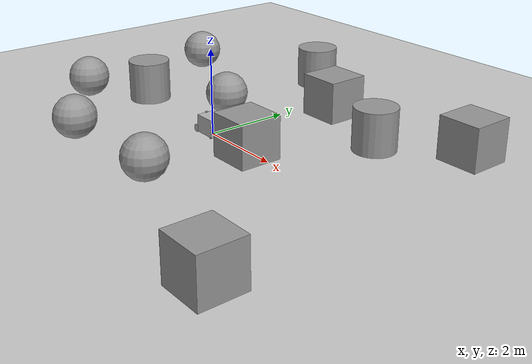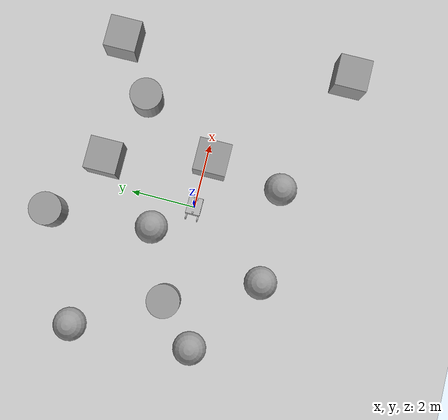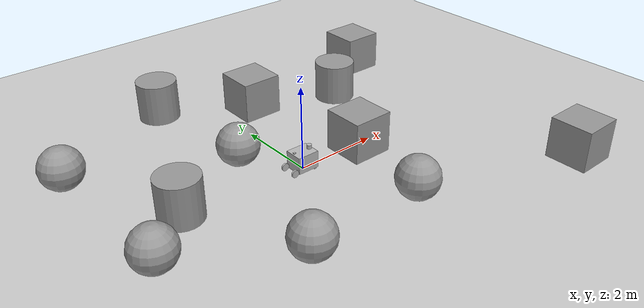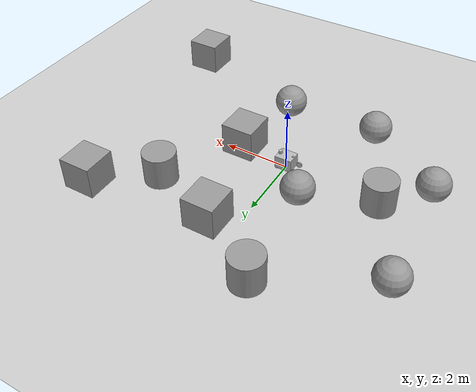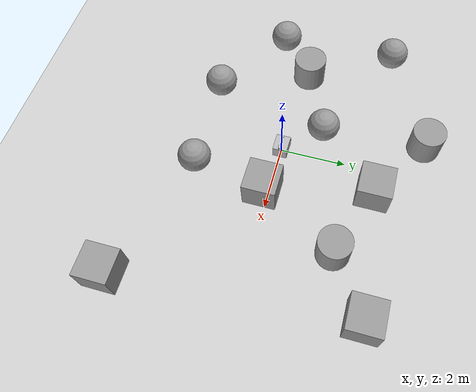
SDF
<sdf version="1.7">
 <world name="default">
  <light name="sun" type="directional">
   <pose>0 0 10 0 -0 0</pose>
   <diffuse>0.8 0.8 0.8 1</diffuse>
   <specular>0.2 0.2 0.2 1</specular>
   <attenuation>
    <range>1000</range>
    <constant>0.9</constant>
    <linear>0.01</linear>
    <quadratic>0.001</quadratic>
   </attenuation>
   <direction>-0.5 0.1 -0.9</direction>
   <spot><inner_angle>0</inner_angle><outer_angle>0</outer_angle><falloff>0</falloff></spot>
  </light>
  <model name="ground_plane">
   <static>1</static>
   <link name="link">
    <collision name="collision">
     <geometry><plane><normal>0 0 1</normal><size>100 100</size></plane></geometry>
     <surface><friction><ode><mu>100</mu><mu2>50</mu2></ode></friction></surface>
    </collision>
    <visual name="visual">
     <cast_shadows>0</cast_shadows>
     <geometry><plane><normal>0 0 1</normal><size>100 100</size></plane></geometry>
     <material>
      <script><uri>file://media/materials/scripts/gazebo.material</uri><name>Gazebo/Grey</name></script>
     </material>
    </visual>
   </link>
  </model>
  <gravity>0 0 -9.8</gravity>
  <magnetic_field>6e-06 2.3e-05 -4.2e-05</magnetic_field>
  <atmosphere type="adiabatic"/>
  <physics type="ode">
   <max_step_size>0.001</max_step_size>
   <real_time_factor>1</real_time_factor>
   <real_time_update_rate>1000</real_time_update_rate>
  </physics>
  <scene><ambient>0.4 0.4 0.4 1</ambient><background>0.7 0.7 0.7 1</background><shadows>1</shadows></scene>
  <spherical_coordinates>
   <surface_model>EARTH_WGS84</surface_model>
   <latitude_deg>0</latitude_deg>
   <longitude_deg>0</longitude_deg>
   <elevation>0</elevation>
   <heading_deg>0</heading_deg>
  </spherical_coordinates>
  <model name="unit_box">
   <pose>1.51271 -0.181418 0.499995 0 -1e-05 0</pose>
   <link name="link">
    <inertial>
     <mass>1</mass>
     <inertia>
      <ixx>0.166667</ixx>
      <ixy>0</ixy>
      <ixz>0</ixz>
      <iyy>0.166667</iyy>
      <iyz>0</iyz>
      <izz>0.166667</izz>
     </inertia>
    </inertial>
    <collision name="collision"><geometry><box><size>1 1 1</size></box></geometry></collision>
    <visual name="visual">
     <geometry><box><size>1 1 1</size></box></geometry>
     <material>
      <script><name>Gazebo/Grey</name><uri>file://media/materials/scripts/gazebo.material</uri></script>
     </material>
    </visual>
   </link>
  </model>
  <model name="unit_sphere">
   <pose>-0.944955 1.09802 0.5 0 -0 0</pose>
   <link name="link">
    <inertial>
     <mass>1</mass>
     <inertia><ixx>0.1</ixx><ixy>0</ixy><ixz>0</ixz><iyy>0.1</iyy><iyz>0</iyz><izz>0.1</izz></inertia>
    </inertial>
    <collision name="collision"><geometry><sphere><radius>0.5</radius></sphere></geometry></collision>
    <visual name="visual">
     <geometry><sphere><radius>0.5</radius></sphere></geometry>
     <material>
      <script><name>Gazebo/Grey</name><uri>file://media/materials/scripts/gazebo.material</uri></script>
     </material>
    </visual>
   </link>
  </model>
  <audio><device>default</device></audio>
  <model name="diff_bot">
   <link name="base_link">
    <inertial>
     <pose>0.000869 0 0.002817 1.5708 -0 1.5708</pose>
     <mass>15.175</mass>
     <inertia>
      <ixx>0.572991</ixx>
      <ixy>-9.85017e-19</ixy>
      <ixz>-1.97894e-18</ixz>
      <iyy>0.594538</iyy>
      <iyz>-0.00347722</iyz>
      <izz>0.463474</izz>
     </inertia>
    </inertial>
    <collision name="base_link_collision"><geometry><box><size>0.525 0.44 0.41</size></box></geometry></collision>
    <collision name="base_link_fixed_joint_lump__imu_link_collision_1">
     <pose>-0.2175 0 0.23 0 -0 0</pose>
     <geometry><box><size>0.05 0.05 0.02</size></box></geometry>
    </collision>
    <collision name="base_link_fixed_joint_lump__lidar_link_collision_2">
     <pose>0.1925 0 0.25 0 -0 0</pose>
     <geometry><cylinder><length>0.09</length><radius>0.06</radius></cylinder></geometry>
    </collision>
    <visual name="base_link_visual"><geometry><box><size>0.525 0.44 0.41</size></box></geometry></visual>
    <visual name="base_link_fixed_joint_lump__imu_link_visual_1">
     <pose>-0.2175 0 0.23 0 -0 0</pose>
     <geometry><box><size>0.05 0.05 0.02</size></box></geometry>
    </visual>
    <visual name="base_link_fixed_joint_lump__lidar_link_visual_2">
     <pose>0.1925 0 0.25 0 -0 0</pose>
     <geometry><cylinder><length>0.09</length><radius>0.06</radius></cylinder></geometry>
    </visual>
    <sensor name="imu_sensor" type="imu">
     <plugin name="imu_plugin" filename="libgazebo_ros_imu_sensor.so">
      <ros><namespace>/demo</namespace><remapping>~/out:=imu</remapping></ros>
      <initial_orientation_as_reference>0</initial_orientation_as_reference>
     </plugin>
     <always_on>1</always_on>
     <update_rate>100</update_rate>
     <visualize>1</visualize>
     <imu>
      <angular_velocity>
       <x>
        <noise type="gaussian">
         <mean>0</mean>
         <stddev>0.0002</stddev>
         <bias_mean>7.5e-06</bias_mean>
         <bias_stddev>8e-07</bias_stddev>
        </noise>
       </x>
       <y>
        <noise type="gaussian">
         <mean>0</mean>
         <stddev>0.0002</stddev>
         <bias_mean>7.5e-06</bias_mean>
         <bias_stddev>8e-07</bias_stddev>
        </noise>
       </y>
       <z>
        <noise type="gaussian">
         <mean>0</mean>
         <stddev>0.0002</stddev>
         <bias_mean>7.5e-06</bias_mean>
         <bias_stddev>8e-07</bias_stddev>
        </noise>
       </z>
      </angular_velocity>
      <linear_acceleration>
       <x>
        <noise type="gaussian">
         <mean>0</mean>
         <stddev>0.017</stddev>
         <bias_mean>0.1</bias_mean>
         <bias_stddev>0.001</bias_stddev>
        </noise>
       </x>
       <y>
        <noise type="gaussian">
         <mean>0</mean>
         <stddev>0.017</stddev>
         <bias_mean>0.1</bias_mean>
         <bias_stddev>0.001</bias_stddev>
        </noise>
       </y>
       <z>
        <noise type="gaussian">
         <mean>0</mean>
         <stddev>0.017</stddev>
         <bias_mean>0.1</bias_mean>
         <bias_stddev>0.001</bias_stddev>
        </noise>
       </z>
      </linear_acceleration>
     </imu>
     <pose>-0.2175 0 0.23 0 -0 0</pose>
    </sensor>
    <sensor name="lidar" type="ray">
     <always_on>1</always_on>
     <visualize>1</visualize>
     <update_rate>5</update_rate>
     <ray>
      <scan>
       <horizontal>
        <samples>360</samples>
        <resolution>1</resolution>
        <min_angle>0</min_angle>
        <max_angle>6.28</max_angle>
       </horizontal>
       <vertical><samples>1</samples><min_angle>0</min_angle><max_angle>0</max_angle></vertical>
      </scan>
      <range><min>0.12</min><max>3.5</max><resolution>0.015</resolution></range>
      <noise><type>gaussian</type><mean>0</mean><stddev>0.01</stddev></noise>
     </ray>
     <plugin name="scan" filename="libgazebo_ros_ray_sensor.so">
      <ros><remapping>~/out:=scan</remapping></ros>
      <output_type>sensor_msgs/LaserScan</output_type>
      <frame_name>lidar_link</frame_name>
     </plugin>
     <pose>0.1925 0 0.25 0 -0 0</pose>
    </sensor>
   </link>
   <joint name="left_caster_joint" type="revolute">
    <pose relative_to="base_link">0.2 0.18 -0.205 0 -0 0</pose>
    <parent>base_link</parent>
    <child>left_caster_link</child>
    <axis>
     <xyz>0 1 0</xyz>
     <limit><lower>-1e+16</lower><upper>1e+16</upper></limit>
     <dynamics><spring_reference>0</spring_reference><spring_stiffness>0</spring_stiffness></dynamics>
    </axis>
   </joint>
   <link name="left_caster_link">
    <pose relative_to="left_caster_joint">0 0 0 0 -0 0</pose>
    <inertial>
     <pose>0 0 0 1.5708 -0 0</pose>
     <mass>0.5</mass>
     <inertia>
      <ixx>0.000319792</ixx>
      <ixy>0</ixy>
      <ixz>0</ixz>
      <iyy>0.000319792</iyy>
      <iyz>0</iyz>
      <izz>0.00050625</izz>
     </inertia>
    </inertial>
    <collision name="left_caster_link_collision">
     <pose>0 0 0 1.5708 -0 0</pose>
     <geometry><cylinder><length>0.04</length><radius>0.045</radius></cylinder></geometry>
    </collision>
    <visual name="left_caster_link_visual">
     <pose>0 0 0 1.5708 -0 0</pose>
     <geometry><cylinder><length>0.04</length><radius>0.045</radius></cylinder></geometry>
    </visual>
   </link>
   <joint name="left_wheel_joint" type="revolute">
    <pose relative_to="base_link">-0.3475 0.18 -0.16 0 -0 0</pose>
    <parent>base_link</parent>
    <child>left_wheel_link</child>
    <axis>
     <xyz>0 1 0</xyz>
     <limit><lower>-1e+16</lower><upper>1e+16</upper></limit>
     <dynamics><spring_reference>0</spring_reference><spring_stiffness>0</spring_stiffness></dynamics>
    </axis>
   </joint>
   <link name="left_wheel_link">
    <pose relative_to="left_wheel_joint">0 0 0 0 -0 0</pose>
    <inertial>
     <pose>0 0 0 1.5708 -0 0</pose>
     <mass>1.5</mass>
     <inertia>
      <ixx>0.0032375</ixx>
      <ixy>0</ixy>
      <ixz>0</ixz>
      <iyy>0.0032375</iyy>
      <iyz>0</iyz>
      <izz>0.006075</izz>
     </inertia>
    </inertial>
    <collision name="left_wheel_link_collision">
     <pose>0 0 0 1.5708 -0 0</pose>
     <geometry><cylinder><length>0.04</length><radius>0.09</radius></cylinder></geometry>
    </collision>
    <visual name="left_wheel_link_visual">
     <pose>0 0 0 1.5708 -0 0</pose>
     <geometry><cylinder><length>0.04</length><radius>0.09</radius></cylinder></geometry>
    </visual>
   </link>
   <joint name="right_caster_joint" type="revolute">
    <pose relative_to="base_link">0.2 -0.18 -0.205 0 -0 0</pose>
    <parent>base_link</parent>
    <child>right_caster_link</child>
    <axis>
     <xyz>0 1 0</xyz>
     <limit><lower>-1e+16</lower><upper>1e+16</upper></limit>
     <dynamics><spring_reference>0</spring_reference><spring_stiffness>0</spring_stiffness></dynamics>
    </axis>
   </joint>
   <link name="right_caster_link">
    <pose relative_to="right_caster_joint">0 0 0 0 -0 0</pose>
    <inertial>
     <pose>0 0 0 1.5708 -0 0</pose>
     <mass>0.5</mass>
     <inertia>
      <ixx>0.000319792</ixx>
      <ixy>0</ixy>
      <ixz>0</ixz>
      <iyy>0.000319792</iyy>
      <iyz>0</iyz>
      <izz>0.00050625</izz>
     </inertia>
    </inertial>
    <collision name="right_caster_link_collision">
     <pose>0 0 0 1.5708 -0 0</pose>
     <geometry><cylinder><length>0.04</length><radius>0.045</radius></cylinder></geometry>
    </collision>
    <visual name="right_caster_link_visual">
     <pose>0 0 0 1.5708 -0 0</pose>
     <geometry><cylinder><length>0.04</length><radius>0.045</radius></cylinder></geometry>
    </visual>
   </link>
   <joint name="right_wheel_joint" type="revolute">
    <pose relative_to="base_link">-0.3475 -0.18 -0.16 0 -0 0</pose>
    <parent>base_link</parent>
    <child>right_wheel_link</child>
    <axis>
     <xyz>0 1 0</xyz>
     <limit><lower>-1e+16</lower><upper>1e+16</upper></limit>
     <dynamics><spring_reference>0</spring_reference><spring_stiffness>0</spring_stiffness></dynamics>
    </axis>
   </joint>
   <link name="right_wheel_link">
    <pose relative_to="right_wheel_joint">0 0 0 0 -0 0</pose>
    <inertial>
     <pose>0 0 0 1.5708 -0 0</pose>
     <mass>1.5</mass>
     <inertia>
      <ixx>0.0032375</ixx>
      <ixy>0</ixy>
      <ixz>0</ixz>
      <iyy>0.0032375</iyy>
      <iyz>0</iyz>
      <izz>0.006075</izz>
     </inertia>
    </inertial>
    <collision name="right_wheel_link_collision">
     <pose>0 0 0 1.5708 -0 0</pose>
     <geometry><cylinder><length>0.04</length><radius>0.09</radius></cylinder></geometry>
    </collision>
    <visual name="right_wheel_link_visual">
     <pose>0 0 0 1.5708 -0 0</pose>
     <geometry><cylinder><length>0.04</length><radius>0.09</radius></cylinder></geometry>
    </visual>
   </link>
   <static>0</static>
   <plugin name="gazebo_ros2_control" filename="libgazebo_ros2_control.so">
    <parameters>/home/future/Documents/Robot/nav_ws/install/diff_control/share/diff_control/config/diffbot_controllers.yaml</parameters>
    <parameters>/home/future/Documents/Robot/nav_ws/install/diff_control/share/diff_control/config/gazebo_use_sim_control.yaml</parameters>
   </plugin>
   <pose>0.00124 -0.00159 0.250001 0 -1e-06 -0.009603</pose>
  </model>
  <model name="unit_sphere_0">
   <pose>-4.14249 -0.903643 0.5 0 -0 0</pose>
   <link name="link">
    <inertial>
     <mass>1</mass>
     <inertia><ixx>0.1</ixx><ixy>0</ixy><ixz>0</ixz><iyy>0.1</iyy><iyz>0</iyz><izz>0.1</izz></inertia>
    </inertial>
    <collision name="collision"><geometry><sphere><radius>0.5</radius></sphere></geometry></collision>
    <visual name="visual">
     <geometry><sphere><radius>0.5</radius></sphere></geometry>
     <material>
      <script><name>Gazebo/Grey</name><uri>file://media/materials/scripts/gazebo.material</uri></script>
     </material>
    </visual>
   </link>
  </model>
  <model name="unit_sphere_1">
   <pose>-1.76406 -2.49421 0.5 0 -0 0</pose>
   <link name="link">
    <inertial>
     <mass>1</mass>
     <inertia><ixx>0.1</ixx><ixy>0</ixy><ixz>0</ixz><iyy>0.1</iyy><iyz>0</iyz><izz>0.1</izz></inertia>
    </inertial>
    <collision name="collision"><geometry><sphere><radius>0.5</radius></sphere></geometry></collision>
    <visual name="visual">
     <geometry><sphere><radius>0.5</radius></sphere></geometry>
     <material>
      <script><name>Gazebo/Grey</name><uri>file://media/materials/scripts/gazebo.material</uri></script>
     </material>
    </visual>
   </link>
  </model>
  <model name="unit_sphere_2">
   <pose>-4.32969 2.71476 0.5 0 -0 0</pose>
   <link name="link">
    <inertial>
     <mass>1</mass>
     <inertia><ixx>0.1</ixx><ixy>0</ixy><ixz>0</ixz><iyy>0.1</iyy><iyz>0</iyz><izz>0.1</izz></inertia>
    </inertial>
    <collision name="collision"><geometry><sphere><radius>0.5</radius></sphere></geometry></collision>
    <visual name="visual">
     <geometry><sphere><radius>0.5</radius></sphere></geometry>
     <material>
      <script><name>Gazebo/Grey</name><uri>file://media/materials/scripts/gazebo.material</uri></script>
     </material>
    </visual>
   </link>
  </model>
  <model name="unit_cylinder">
   <pose>-1.20514 4.24986 0.499992 -3e-06 4e-06 0</pose>
   <link name="link">
    <inertial>
     <mass>1</mass>
     <inertia><ixx>0.145833</ixx><ixy>0</ixy><ixz>0</ixz><iyy>0.145833</iyy><iyz>0</iyz><izz>0.125</izz></inertia>
    </inertial>
    <collision name="collision">
     <geometry><cylinder><radius>0.5</radius><length>1</length></cylinder></geometry>
    </collision>
    <visual name="visual">
     <geometry><cylinder><radius>0.5</radius><length>1</length></cylinder></geometry>
     <material>
      <script><name>Gazebo/Grey</name><uri>file://media/materials/scripts/gazebo.material</uri></script>
     </material>
    </visual>
   </link>
  </model>
  <model name="unit_box_0">
   <pose>4.55142 3.41188 0.499995 -1e-05 -0 -0</pose>
   <link name="link">
    <inertial>
     <mass>1</mass>
     <inertia>
      <ixx>0.166667</ixx>
      <ixy>0</ixy>
      <ixz>0</ixz>
      <iyy>0.166667</iyy>
      <iyz>0</iyz>
      <izz>0.166667</izz>
     </inertia>
    </inertial>
    <collision name="collision"><geometry><box><size>1 1 1</size></box></geometry></collision>
    <visual name="visual">
     <geometry><box><size>1 1 1</size></box></geometry>
     <material>
      <script><name>Gazebo/Grey</name><uri>file://media/materials/scripts/gazebo.material</uri></script>
     </material>
    </visual>
   </link>
  </model>
  <model name="unit_box_1">
   <pose>5.07733 -3.7138 0.499995 0 1e-05 0</pose>
   <link name="link">
    <inertial>
     <mass>1</mass>
     <inertia>
      <ixx>0.166667</ixx>
      <ixy>0</ixy>
      <ixz>0</ixz>
      <iyy>0.166667</iyy>
      <iyz>0</iyz>
      <izz>0.166667</izz>
     </inertia>
    </inertial>
    <collision name="collision"><geometry><box><size>1 1 1</size></box></geometry></collision>
    <visual name="visual">
     <geometry><box><size>1 1 1</size></box></geometry>
     <material>
      <script><name>Gazebo/Grey</name><uri>file://media/materials/scripts/gazebo.material</uri></script>
     </material>
    </visual>
   </link>
  </model>
  <model name="unit_sphere_3">
   <pose>1.12428 -2.42565 0.5 0 -0 0</pose>
   <link name="link">
    <inertial>
     <mass>1</mass>
     <inertia><ixx>0.1</ixx><ixy>0</ixy><ixz>0</ixz><iyy>0.1</iyy><iyz>0</iyz><izz>0.1</izz></inertia>
    </inertial>
    <collision name="collision"><geometry><sphere><radius>0.5</radius></sphere></geometry></collision>
    <visual name="visual">
     <geometry><sphere><radius>0.5</radius></sphere></geometry>
     <material>
      <script><name>Gazebo/Grey</name><uri>file://media/materials/scripts/gazebo.material</uri></script>
     </material>
    </visual>
   </link>
  </model>
  <model name="unit_cylinder_0">
   <pose>2.88732 2.24013 0.499997 3e-06 4e-06 -0</pose>
   <link name="link">
    <inertial>
     <mass>1</mass>
     <inertia><ixx>0.145833</ixx><ixy>0</ixy><ixz>0</ixz><iyy>0.145833</iyy><iyz>0</iyz><izz>0.125</izz></inertia>
    </inertial>
    <collision name="collision">
     <geometry><cylinder><radius>0.5</radius><length>1</length></cylinder></geometry>
    </collision>
    <visual name="visual">
     <geometry><cylinder><radius>0.5</radius><length>1</length></cylinder></geometry>
     <material>
      <script><name>Gazebo/Grey</name><uri>file://media/materials/scripts/gazebo.material</uri></script>
     </material>
    </visual>
   </link>
  </model>
  <model name="unit_box_2">
   <pose>0.761169 3.00725 0.499995 -1e-05 -0 0</pose>
   <link name="link">
    <inertial>
     <mass>1</mass>
     <inertia>
      <ixx>0.166667</ixx>
      <ixy>0</ixy>
      <ixz>0</ixz>
      <iyy>0.166667</iyy>
      <iyz>0</iyz>
      <izz>0.166667</izz>
     </inertia>
    </inertial>
    <collision name="collision"><geometry><box><size>1 1 1</size></box></geometry></collision>
    <visual name="visual">
     <geometry><box><size>1 1 1</size></box></geometry>
     <material>
      <script><name>Gazebo/Grey</name><uri>file://media/materials/scripts/gazebo.material</uri></script>
     </material>
    </visual>
   </link>
  </model>
  <model name="unit_cylinder_1">
   <pose>-2.97625 0.178413 0.499997 3e-06 4e-06 -0</pose>
   <link name="link">
    <inertial>
     <mass>1</mass>
     <inertia><ixx>0.145833</ixx><ixy>0</ixy><ixz>0</ixz><iyy>0.145833</iyy><iyz>0</iyz><izz>0.125</izz></inertia>
    </inertial>
    <collision name="collision">
     <geometry><cylinder><radius>0.5</radius><length>1</length></cylinder></geometry>
    </collision>
    <visual name="visual">
     <geometry><cylinder><radius>0.5</radius><length>1</length></cylinder></geometry>
     <material>
      <script><name>Gazebo/Grey</name><uri>file://media/materials/scripts/gazebo.material</uri></script>
     </material>
    </visual>
   </link>
  </model>
 </world>
</sdf>
